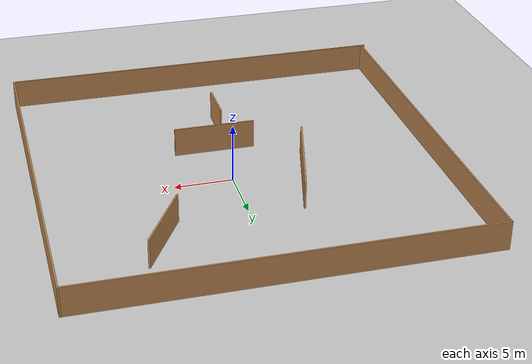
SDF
<sdf version="1.7">
 <world name="default">
  <light name="sun" type="directional">
   <pose>0 0 10 0 -0 0</pose>
   <diffuse>0.8 0.8 0.8 1</diffuse>
   <specular>0.2 0.2 0.2 1</specular>
   <attenuation>
    <range>1000</range>
    <constant>0.9</constant>
    <linear>0.01</linear>
    <quadratic>0.001</quadratic>
   </attenuation>
   <direction>-0.5 0.1 -0.9</direction>
   <spot><inner_angle>0</inner_angle><outer_angle>0</outer_angle><falloff>0</falloff></spot>
  </light>
  <model name="ground_plane">
   <static>1</static>
   <link name="link">
    <collision name="collision">
     <geometry><plane><normal>0 0 1</normal><size>100 100</size></plane></geometry>
     <surface>
      <contact><collide_bitmask>65535</collide_bitmask></contact>
      <friction><ode><mu>100</mu><mu2>50</mu2></ode></friction>
     </surface>
    </collision>
    <visual name="visual">
     <cast_shadows>0</cast_shadows>
     <geometry><plane><normal>0 0 1</normal><size>100 100</size></plane></geometry>
     <material>
      <script><uri>file://media/materials/scripts/gazebo.material</uri><name>Gazebo/Grey</name></script>
     </material>
    </visual>
   </link>
  </model>
  <gravity>0 0 -9.8</gravity>
  <magnetic_field>6e-06 2.3e-05 -4.2e-05</magnetic_field>
  <atmosphere type="adiabatic"/>
  <physics type="ode">
   <max_step_size>0.001</max_step_size>
   <real_time_factor>1</real_time_factor>
   <real_time_update_rate>1000</real_time_update_rate>
  </physics>
  <scene><ambient>0.4 0.4 0.4 1</ambient><background>0.7 0.7 0.7 1</background><shadows>1</shadows></scene>
  <spherical_coordinates>
   <surface_model>EARTH_WGS84</surface_model>
   <latitude_deg>0</latitude_deg>
   <longitude_deg>0</longitude_deg>
   <elevation>0</elevation>
   <heading_deg>0</heading_deg>
  </spherical_coordinates>
  <model name="Untitled">
   <pose>-0.807933 -1.49435 0 0 -0 0</pose>
   <link name="Wall_0">
    <collision name="Wall_0_Collision">
     <geometry><box><size>34.25 0.15 2.5</size></box></geometry>
     <pose>0 0 1.25 0 -0 0</pose>
    </collision>
    <visual name="Wall_0_Visual">
     <pose>0 0 1.25 0 -0 0</pose>
     <geometry><box><size>34.25 0.15 2.5</size></box></geometry>
     <material>
      <script><uri>file://media/materials/scripts/gazebo.material</uri><name>Gazebo/Wood</name></script>
      <ambient>1 1 1 1</ambient>
     </material>
     <meta><layer>0</layer></meta>
    </visual>
    <pose>-2e-06 -16.675 0 0 -0 0</pose>
   </link>
   <link name="Wall_1">
    <collision name="Wall_1_Collision">
     <geometry><box><size>33.5 0.15 2.5</size></box></geometry>
     <pose>0 0 1.25 0 -0 0</pose>
    </collision>
    <visual name="Wall_1_Visual">
     <pose>0 0 1.25 0 -0 0</pose>
     <geometry><box><size>33.5 0.15 2.5</size></box></geometry>
     <material>
      <script><uri>file://media/materials/scripts/gazebo.material</uri><name>Gazebo/Wood</name></script>
      <ambient>1 1 1 1</ambient>
     </material>
     <meta><layer>0</layer></meta>
    </visual>
    <pose>17.05 0 0 0 -0 1.5708</pose>
   </link>
   <link name="Wall_10">
    <collision name="Wall_10_Collision">
     <geometry><box><size>3.75 0.15 2.5</size></box></geometry>
     <pose>0 0 1.25 0 -0 0</pose>
    </collision>
    <visual name="Wall_10_Visual">
     <pose>0 0 1.25 0 -0 0</pose>
     <geometry><box><size>3.75 0.15 2.5</size></box></geometry>
     <material>
      <script><uri>file://media/materials/scripts/gazebo.material</uri><name>Gazebo/Wood</name></script>
      <ambient>1 1 1 1</ambient>
     </material>
     <meta><layer>0</layer></meta>
    </visual>
    <pose>-0.078603 -8.22777 0 0 -0 -1.5708</pose>
   </link>
   <link name="Wall_12">
    <collision name="Wall_12_Collision">
     <geometry><box><size>6.75 0.15 2.5</size></box></geometry>
     <pose>0 0 1.25 0 -0 0</pose>
    </collision>
    <visual name="Wall_12_Visual">
     <pose>0 0 1.25 0 -0 0</pose>
     <geometry><box><size>6.75 0.15 2.5</size></box></geometry>
     <material>
      <script><uri>file://media/materials/scripts/gazebo.material</uri><name>Gazebo/Wood</name></script>
      <ambient>1 1 1 1</ambient>
     </material>
     <meta><layer>0</layer></meta>
    </visual>
    <pose>8.25414 9.5481 0 0 -0 1.0472</pose>
   </link>
   <link name="Wall_2">
    <collision name="Wall_2_Collision">
     <geometry><box><size>34 0.15 2.5</size></box></geometry>
     <pose>0 0 1.25 0 -0 0</pose>
    </collision>
    <visual name="Wall_2_Visual">
     <pose>0 0 1.25 0 -0 0</pose>
     <geometry><box><size>34 0.15 2.5</size></box></geometry>
     <material>
      <script><uri>file://media/materials/scripts/gazebo.material</uri><name>Gazebo/Wood</name></script>
      <ambient>1 1 1 1</ambient>
     </material>
     <meta><layer>0</layer></meta>
    </visual>
    <pose>0.124998 16.675 0 0 -0 3.14159</pose>
   </link>
   <link name="Wall_3">
    <collision name="Wall_3_Collision">
     <geometry><box><size>33.5 0.15 2.5</size></box></geometry>
     <pose>0 0 1.25 0 -0 0</pose>
    </collision>
    <visual name="Wall_3_Visual">
     <pose>0 0 1.25 0 -0 0</pose>
     <geometry><box><size>33.5 0.15 2.5</size></box></geometry>
     <material>
      <script><uri>file://media/materials/scripts/gazebo.material</uri><name>Gazebo/Wood</name></script>
      <ambient>1 1 1 1</ambient>
     </material>
     <meta><layer>0</layer></meta>
    </visual>
    <pose>-16.8 0 0 0 -0 -1.5708</pose>
   </link>
   <link name="Wall_6">
    <collision name="Wall_6_Collision">
     <geometry><box><size>7 0.15 2.5</size></box></geometry>
     <pose>0 0 1.25 0 -0 0</pose>
    </collision>
    <visual name="Wall_6_Visual">
     <pose>0 0 1.25 0 -0 0</pose>
     <geometry><box><size>7 0.15 2.5</size></box></geometry>
     <material>
      <script><uri>file://media/materials/scripts/gazebo.material</uri><name>Gazebo/Wood</name></script>
      <ambient>1 1 1 1</ambient>
     </material>
     <meta><layer>0</layer></meta>
    </visual>
    <pose>1.11882 -3.82892 0 0 -0 0</pose>
   </link>
   <link name="Wall_8">
    <collision name="Wall_8_Collision">
     <geometry><box><size>9.25 0.15 2.5</size></box></geometry>
     <pose>0 0 1.25 0 -0 0</pose>
    </collision>
    <visual name="Wall_8_Visual">
     <pose>0 0 1.25 0 -0 0</pose>
     <geometry><box><size>9.25 0.15 2.5</size></box></geometry>
     <material>
      <script><uri>file://media/materials/scripts/gazebo.material</uri><name>Gazebo/Wood</name></script>
      <ambient>1 1 1 1</ambient>
     </material>
     <meta><layer>0</layer></meta>
    </visual>
    <pose>-4.84511 2.79027 0 0 -0 -1.8326</pose>
   </link>
   <static>1</static>
  </model>
 </world>
</sdf>
